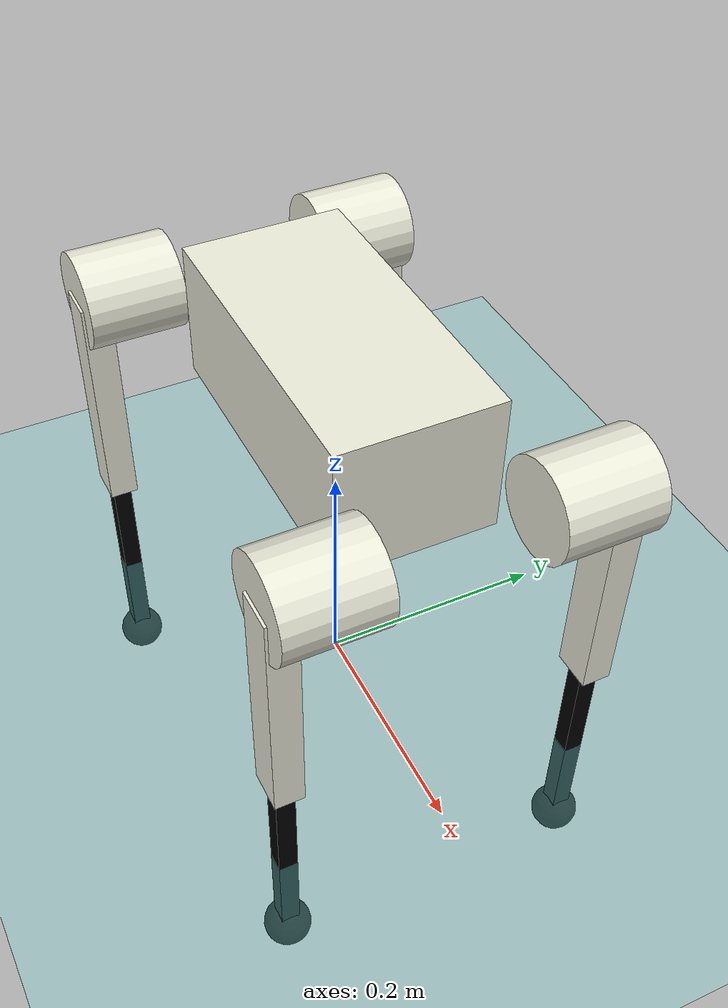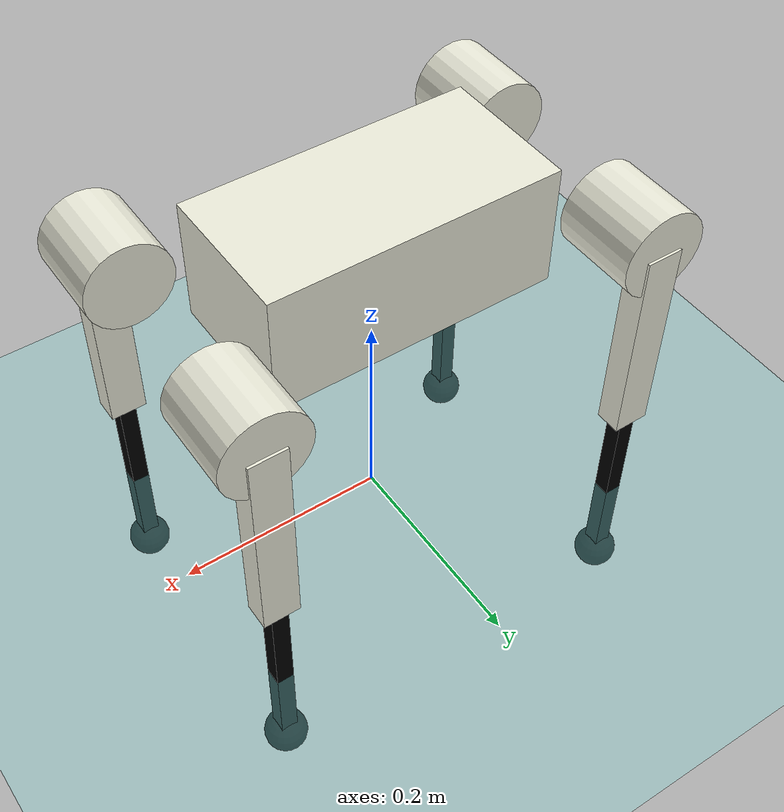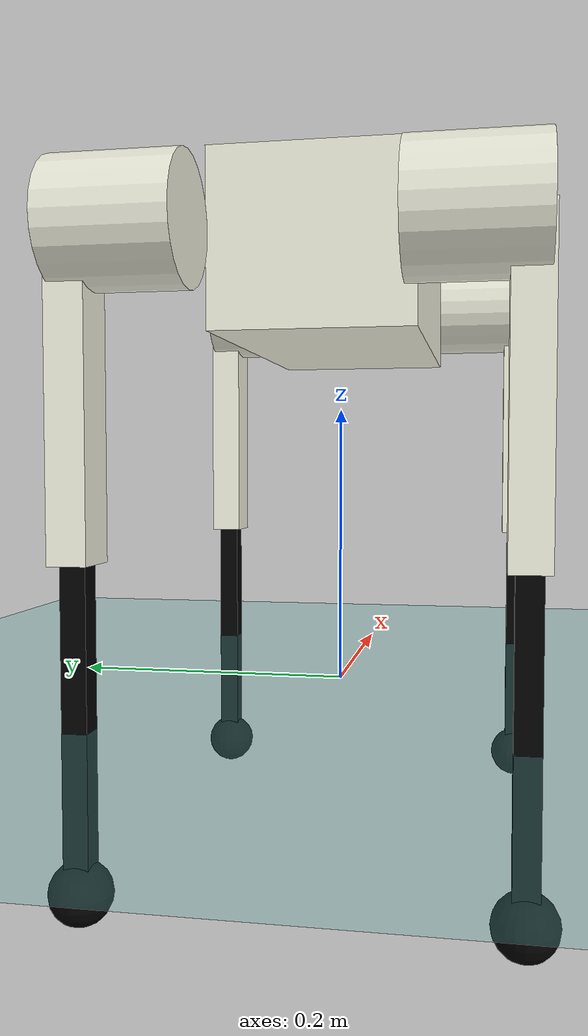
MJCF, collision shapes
<mujoco model="a1_description">
    <compiler angle="radian" meshdir="./meshes/" />
    <size njmax="500" nconmax="100" />
    <option gravity='0 0 -9.806' iterations='50' timestep='0.002'/>

    <default>
        <geom contype="1" conaffinity="1" friction="0.6 0.3 0.3" rgba="0.5 0.6 0.7 1" margin="0.001" group="0"/>

        <light castshadow="false" diffuse="1 1 1"/>
        <motor ctrlrange="-33.5 33.5" ctrllimited="true"/>
        <camera fovy="60"/>
        <joint damping="0.01" armature="0.01" frictionloss="0.2" />

        <default class="unitree">
            <joint limited="true" damping="10" armature="0.001" frictionloss=".2" range="-1.57 1.57"/>
            <geom contype="1" conaffinity="0" condim="4" margin="0.001" solref=".02 1" solimp=".8 .9 .01" group="4" rgba=".4 .5 .6 1"/>
            <position ctrllimited="true"/>
            <default class="viz_metal_grey">
                <geom contype="0" conaffinity="0" type="mesh" material="metal_grey" rgba=".2 .2 .25 1" mass="0" group="1"/>
            </default>
        </default>
    </default>

    <asset>
        <mesh name="trunk" file="trunk.stl" />
        <mesh name="hip" file="hip.stl" />
        <mesh name="thigh_mirror" file="thigh_mirror.stl" />
        <mesh name="calf" file="calf.stl" />
        <mesh name="thigh" file="thigh.stl" />
    </asset>

    <asset>
        <texture type="skybox" builtin="gradient" rgb1="1.0 1.0 1.0" rgb2="1.0 1.0 1.0" width="512" height="512"/>
        <texture name="plane" type="2d" builtin="flat" rgb1="1 1 1" rgb2="1 1 1" width="512" height="512" mark="cross" markrgb="0 0 0"/>
        <material name="plane" reflectance="0.0" texture="plane" texrepeat="3 3" texuniform="true"/>
    </asset>

    <visual>
        <rgba com="0.502 1.0 0 0.5" contactforce="0.98 0.4 0.4 0.7" contactpoint="1.0 1.0 0.6 0.4"/>
        <scale com="0.2" forcewidth="0.035" contactwidth="0.10" contactheight="0.04"/>
    </visual>

    <worldbody>
        <light directional="true" diffuse=".8 .8 .8" pos="0 0 10" dir="0 0 -10"/>
        <camera name="track" mode="trackcom" pos="0 -1.3 1.6" xyaxes="1 0 0 0 0.707 0.707"/>
        <geom name='floor' type='plane' conaffinity='1' condim='3' contype='1' rgba="0.5 0.9 0.9 1" material='plane' pos='0 0 0' size='10 10 10'/>

        <body name="trunk" pos="0 0 0.3">
            <inertial pos="0.0127283 0.00218554 0.000514891" quat="0.00186575 0.711506 0.000389649 0.702677" mass="4.714" diaginertia="0.0648213 0.0565803 0.0169323" />
            <joint type="free" />
            <geom type="mesh" contype="0" conaffinity="0" group="1" rgba="0.913725 0.913725 0.847059 1" mesh="trunk" />
            <geom size="0.1335 0.066 0.057" type="box" rgba="0.913725 0.913725 0.847059 0" />
            <geom size="0.0005 0.0005 0.0005" type="box" contype="0" conaffinity="0" group="1" rgba="0.8 0 0 0" />
            <geom size="0.0005 0.0005 0.0005" type="box" rgba="0.8 0 0 0" />
            <site name="imu" pos="0 0 0" size='0.001 0.001 0.001'/>

            <body name="FR_hip" pos="0.183 -0.047 0">
                <inertial pos="-0.003311 -0.000635 3.1e-05" quat="0.507528 0.506268 0.491507 0.494499" mass="0.696" diaginertia="0.000807752 0.00055293 0.000468983" />
                <joint name="FR_hip_joint" pos="0 0 0" axis="1 0 0" limited="true" range="-0.802851 0.802851" />
                <geom quat="0 1 0 0" type="mesh" contype="0" conaffinity="0" group="1" rgba="0.913725 0.913725 0.847059 1" mesh="hip" />
                <geom size="0.04 0.04" pos="0 -0.055 0" quat="0.707107 0.707107 0 0" type="cylinder" rgba="0.913725 0.913725 0.847059 0" />
                <body name="FR_thigh" pos="0 -0.08505 0">
                    <inertial pos="-0.003237 0.022327 -0.027326" quat="0.999125 -0.00256393 -0.0409531 -0.00806091" mass="1.013" diaginertia="0.00555739 0.00513936 0.00133944" />
                    <joint name="FR_thigh_joint" pos="0 0 0" axis="0 1 0" limited="true" range="-1.0472 4.18879" />
                    <geom type="mesh" contype="0" conaffinity="0" group="1" rgba="0.913725 0.913725 0.847059 1" mesh="thigh_mirror" />
                    <geom size="0.1 0.01225 0.017" pos="0 0 -0.1" quat="0.707107 0 0.707107 0" type="box" rgba="0.913725 0.913725 0.847059 0" />
                    <body name="FR_calf" pos="0 0 -0.2">
                        <inertial pos="0.00472659 0 -0.131975" quat="0.706886 0.017653 0.017653 0.706886" mass="0.226" diaginertia="0.00340344 0.00339393 3.54834e-05" />
                        <joint name="FR_calf_joint" pos="0 0 0" axis="0 1 0" limited="true" range="-2.69653 -0.916298" />
                        <geom type="mesh" contype="0" conaffinity="0" group="1" rgba="0 0 0 1" mesh="calf" />
                        <geom size="0.1 0.008 0.008" pos="0 0 -0.1" quat="0.707107 0 0.707107 0" type="box" rgba="0 0 0 0" />
                        <geom size="0.01" pos="0 0 -0.2" contype="0" conaffinity="0" group="1" rgba="0 0 0 1" />
                        <geom size="0.02" pos="0 0 -0.2" rgba="0 0 0 1" />
                    </body>
                </body>
            </body>
            <body name="FL_hip" pos="0.183 0.047 0">
                <inertial pos="-0.003311 0.000635 3.1e-05" quat="0.494499 0.491507 0.506268 0.507528" mass="0.696" diaginertia="0.000807752 0.00055293 0.000468983" />
                <joint name="FL_hip_joint" pos="0 0 0" axis="1 0 0" limited="true" range="-0.802851 0.802851" />
                <geom type="mesh" contype="0" conaffinity="0" group="1" rgba="0.913725 0.913725 0.847059 1" mesh="hip" />
                <geom size="0.04 0.04" pos="0 0.055 0" quat="0.707107 0.707107 0 0" type="cylinder" rgba="0.913725 0.913725 0.847059 0" />
                <body name="FL_thigh" pos="0 0.08505 0">
                    <inertial pos="-0.003237 -0.022327 -0.027326" quat="0.999125 0.00256393 -0.0409531 0.00806091" mass="1.013" diaginertia="0.00555739 0.00513936 0.00133944" />
                    <joint name="FL_thigh_joint" pos="0 0 0" axis="0 1 0" limited="true" range="-1.0472 4.18879" />
                    <geom type="mesh" contype="0" conaffinity="0" group="1" rgba="0.913725 0.913725 0.847059 1" mesh="thigh" />
                    <geom size="0.1 0.01225 0.017" pos="0 0 -0.1" quat="0.707107 0 0.707107 0" type="box" rgba="0.913725 0.913725 0.847059 0" />
                    <body name="FL_calf" pos="0 0 -0.2">
                        <inertial pos="0.00472659 0 -0.131975" quat="0.706886 0.017653 0.017653 0.706886" mass="0.226" diaginertia="0.00340344 0.00339393 3.54834e-05" />
                        <joint name="FL_calf_joint" pos="0 0 0" axis="0 1 0" limited="true" range="-2.69653 -0.916298" />
                        <geom type="mesh" contype="0" conaffinity="0" group="1" rgba="0 0 0 1" mesh="calf" />
                        <geom size="0.1 0.008 0.008" pos="0 0 -0.1" quat="0.707107 0 0.707107 0" type="box" rgba="0 0 0 0" />
                        <geom size="0.01" pos="0 0 -0.2" contype="0" conaffinity="0" group="1" rgba="0 0 0 1" />
                        <geom size="0.02" pos="0 0 -0.2" rgba="0 0 0 1" />
                    </body>
                </body>
            </body>
            <body name="RR_hip" pos="-0.183 -0.047 0">
                <inertial pos="0.003311 -0.000635 3.1e-05" quat="0.491507 0.494499 0.507528 0.506268" mass="0.696" diaginertia="0.000807752 0.00055293 0.000468983" />
                <joint name="RR_hip_joint" pos="0 0 0" axis="1 0 0" limited="true" range="-0.802851 0.802851" />
                <geom quat="0 0 0 -1" type="mesh" contype="0" conaffinity="0" group="1" rgba="0.913725 0.913725 0.847059 1" mesh="hip" />
                <geom size="0.04 0.04" pos="0 -0.055 0" quat="0.707107 0.707107 0 0" type="cylinder" rgba="0.913725 0.913725 0.847059 0" />
                <body name="RR_thigh" pos="0 -0.08505 0">
                    <inertial pos="-0.003237 0.022327 -0.027326" quat="0.999125 -0.00256393 -0.0409531 -0.00806091" mass="1.013" diaginertia="0.00555739 0.00513936 0.00133944" />
                    <joint name="RR_thigh_joint" pos="0 0 0" axis="0 1 0" limited="true" range="-1.0472 4.18879" />
                    <geom type="mesh" contype="0" conaffinity="0" group="1" rgba="0.913725 0.913725 0.847059 1" mesh="thigh_mirror" />
                    <geom size="0.1 0.01225 0.017" pos="0 0 -0.1" quat="0.707107 0 0.707107 0" type="box" rgba="0.913725 0.913725 0.847059 0" />
                    <body name="RR_calf" pos="0 0 -0.2">
                        <inertial pos="0.00472659 0 -0.131975" quat="0.706886 0.017653 0.017653 0.706886" mass="0.226" diaginertia="0.00340344 0.00339393 3.54834e-05" />
                        <joint name="RR_calf_joint" pos="0 0 0" axis="0 1 0" limited="true" range="-2.69653 -0.916298" />
                        <geom type="mesh" contype="0" conaffinity="0" group="1" rgba="0 0 0 1" mesh="calf" />
                        <geom size="0.1 0.008 0.008" pos="0 0 -0.1" quat="0.707107 0 0.707107 0" type="box" rgba="0 0 0 0" />
                        <geom size="0.01" pos="0 0 -0.2" contype="0" conaffinity="0" group="1" rgba="0 0 0 1" />
                        <geom size="0.02" pos="0 0 -0.2" rgba="0 0 0 1" />
                    </body>
                </body>
            </body>
            <body name="RL_hip" pos="-0.183 0.047 0">
                <inertial pos="0.003311 0.000635 3.1e-05" quat="0.506268 0.507528 0.494499 0.491507" mass="0.696" diaginertia="0.000807752 0.00055293 0.000468983" />
                <joint name="RL_hip_joint" pos="0 0 0" axis="1 0 0" limited="true" range="-0.802851 0.802851" />
                <geom quat="0 0 1 0" type="mesh" contype="0" conaffinity="0" group="1" rgba="0.913725 0.913725 0.847059 1" mesh="hip" />
                <geom size="0.04 0.04" pos="0 0.055 0" quat="0.707107 0.707107 0 0" type="cylinder" rgba="0.913725 0.913725 0.847059 0" />
                <body name="RL_thigh" pos="0 0.08505 0">
                    <inertial pos="-0.003237 -0.022327 -0.027326" quat="0.999125 0.00256393 -0.0409531 0.00806091" mass="1.013" diaginertia="0.00555739 0.00513936 0.00133944" />
                    <joint name="RL_thigh_joint" pos="0 0 0" axis="0 1 0" limited="true" range="-1.0472 4.18879" />
                    <geom type="mesh" contype="0" conaffinity="0" group="1" rgba="0.913725 0.913725 0.847059 1" mesh="thigh" />
                    <geom size="0.1 0.01225 0.017" pos="0 0 -0.1" quat="0.707107 0 0.707107 0" type="box" rgba="0.913725 0.913725 0.847059 0" />
                    <body name="RL_calf" pos="0 0 -0.2">
                        <inertial pos="0.00472659 0 -0.131975" quat="0.706886 0.017653 0.017653 0.706886" mass="0.226" diaginertia="0.00340344 0.00339393 3.54834e-05" />
                        <joint name="RL_calf_joint" pos="0 0 0" axis="0 1 0" limited="true" range="-2.69653 -0.916298" />
                        <geom type="mesh" contype="0" conaffinity="0" group="1" rgba="0 0 0 1" mesh="calf" />
                        <geom size="0.1 0.008 0.008" pos="0 0 -0.1" quat="0.707107 0 0.707107 0" type="box" rgba="0 0 0 0" />
                        <geom size="0.01" pos="0 0 -0.2" contype="0" conaffinity="0" group="1" rgba="0 0 0 1" />
                        <geom size="0.02" pos="0 0 -0.2" rgba="0 0 0 1" />
                    </body>
                </body>
            </body>
        </body>
    </worldbody>

    <actuator>
        <position name="FR_hip" kp="60" joint="FR_hip_joint" class="unitree" ctrlrange="-0.802851 0.802851"/>
        <position name="FR_thigh" kp="60" joint="FR_thigh_joint" class="unitree" ctrlrange="-1.0472 4.18879"/>
        <position name="FR_calf" kp="93.3" joint="FR_calf_joint" class="unitree" ctrlrange="-2.69653 -0.916298"/>
        <position name="FL_hip" kp="60" joint="FL_hip_joint" class="unitree" ctrlrange="-0.802851 0.802851"/>
        <position name="FL_thigh" kp="60" joint="FL_thigh_joint" class="unitree" ctrlrange="-1.0472 4.18879"/>
        <position name="FL_calf" kp="93.3" joint="FL_calf_joint" class="unitree" ctrlrange="-2.69653 -0.916298"/>
        <position name="RR_hip" kp="60" joint="RR_hip_joint" class="unitree" ctrlrange="-0.802851 0.802851"/>
        <position name="RR_thigh" kp="60" joint="RR_thigh_joint" class="unitree" ctrlrange="-1.0472 4.18879"/>
        <position name="RR_calf" kp="93.3" joint="RR_calf_joint" class="unitree" ctrlrange="-2.69653 -0.916298"/>
        <position name="RL_hip" kp="60" joint="RL_hip_joint" class="unitree" ctrlrange="-0.802851 0.802851"/>
        <position name="RL_thigh" kp="60" joint="RL_thigh_joint" class="unitree" ctrlrange="-1.0472 4.18879"/>
        <position name="RL_calf" kp="93.3" joint="RL_calf_joint" class="unitree" ctrlrange="-2.69653 -0.916298"/>
    </actuator>

    <sensor>
        <jointpos name="FR_hip_pos"     joint="FR_hip_joint"/>
        <jointpos name="FR_thigh_pos"   joint="FR_thigh_joint"/>
        <jointpos name="FR_calf_pos"    joint="FR_calf_joint"/>
        <jointpos name="FL_hip_pos"     joint="FL_hip_joint"/>
        <jointpos name="FL_thigh_pos"   joint="FL_thigh_joint"/>
        <jointpos name="FL_calf_pos"    joint="FL_calf_joint"/>
        <jointpos name="RR_hip_pos"     joint="RR_hip_joint"/>
        <jointpos name="RR_thigh_pos"   joint="RR_thigh_joint"/>
        <jointpos name="RR_calf_pos"    joint="RR_calf_joint" />
        <jointpos name="RL_hip_pos"     joint="RL_hip_joint"/>
        <jointpos name="RL_thigh_pos"   joint="RL_thigh_joint"/>
        <jointpos name="RL_calf_pos"    joint="RL_calf_joint"/>

        <jointvel name="FR_hip_vel"     joint="FR_hip_joint"/>
        <jointvel name="FR_thigh_vel"   joint="FR_thigh_joint"/>
        <jointvel name="FR_calf_vel"    joint="FR_calf_joint"/>
        <jointvel name="FL_hip_vel"     joint="FL_hip_joint"/>
        <jointvel name="FL_thigh_vel"   joint="FL_thigh_joint"/>
        <jointvel name="FL_calf_vel"    joint="FL_calf_joint"/>
        <jointvel name="RR_hip_vel"     joint="RR_hip_joint"/>
        <jointvel name="RR_thigh_vel"   joint="RR_thigh_joint"/>
        <jointvel name="RR_calf_vel"    joint="RR_calf_joint" />
        <jointvel name="RL_hip_vel"     joint="RL_hip_joint"/>
        <jointvel name="RL_thigh_vel"   joint="RL_thigh_joint"/>
        <jointvel name="RL_calf_vel"    joint="RL_calf_joint"/>
        <accelerometer name="Body_Acc" site="imu"/>
        <gyro name="Body_Gyro" site="imu"/>
    </sensor>

</mujoco>
